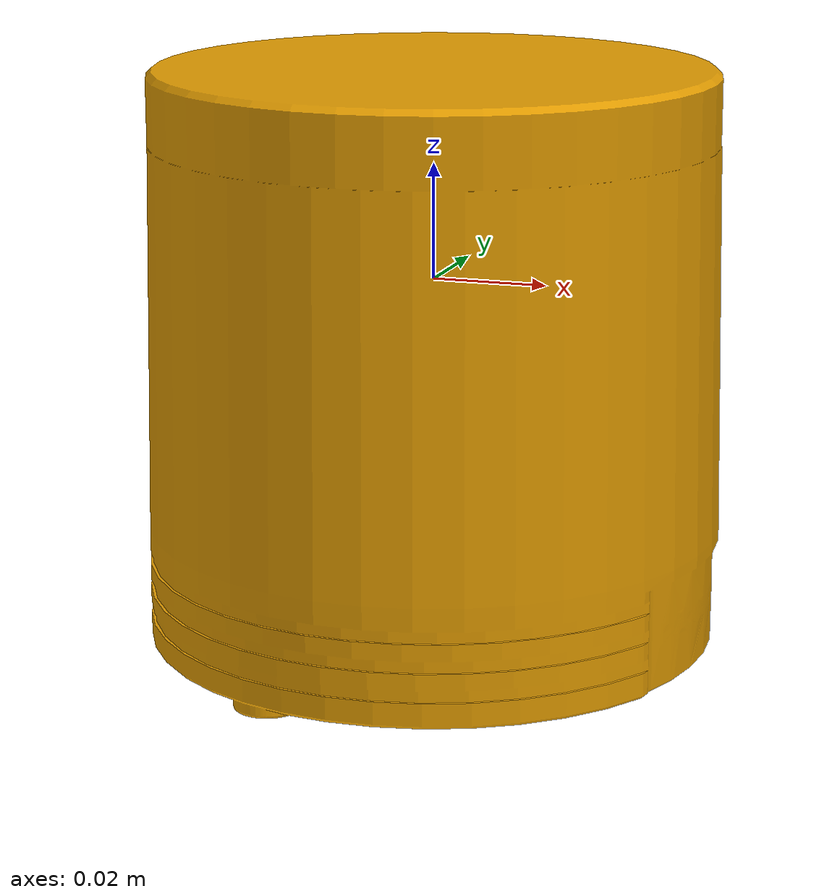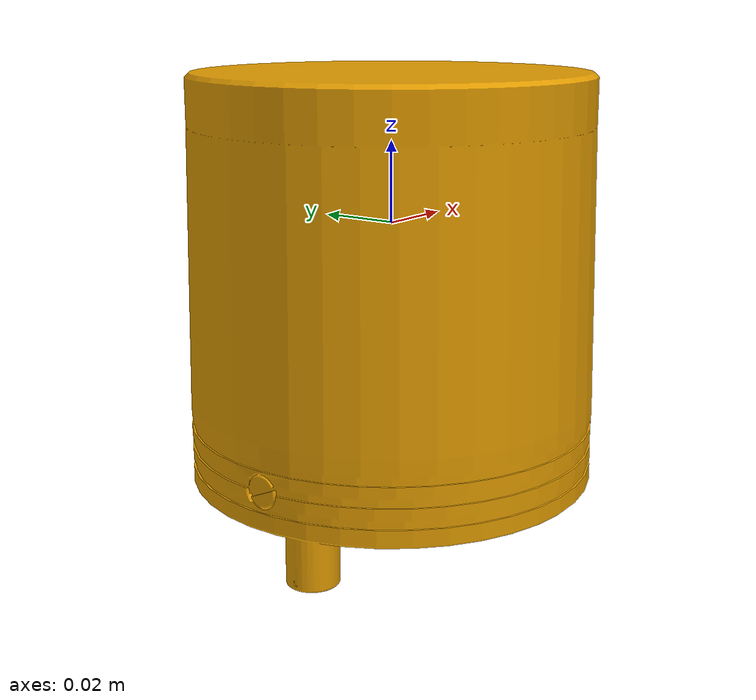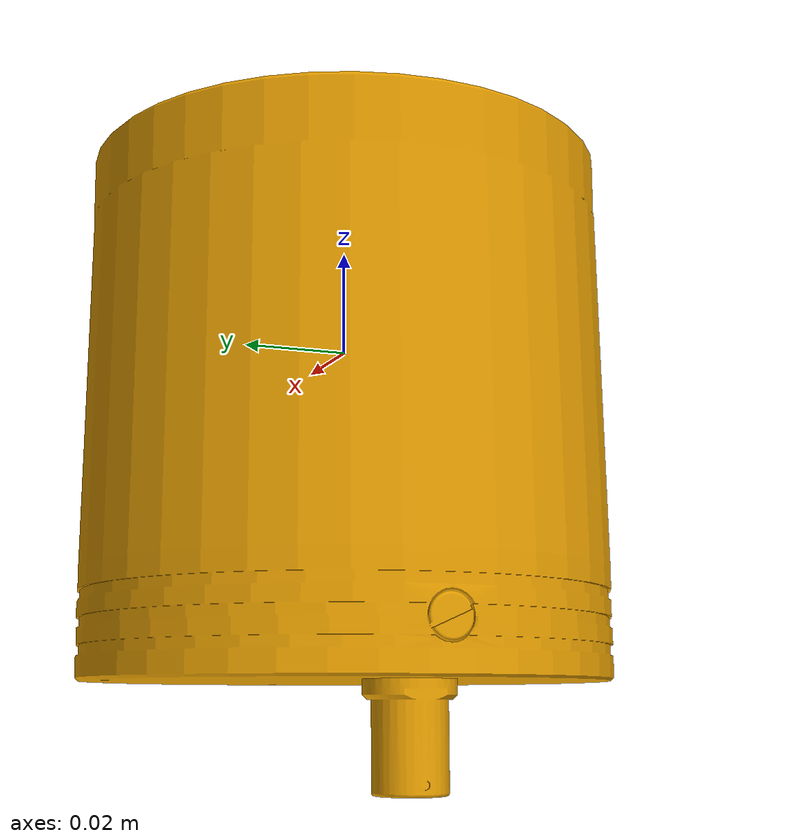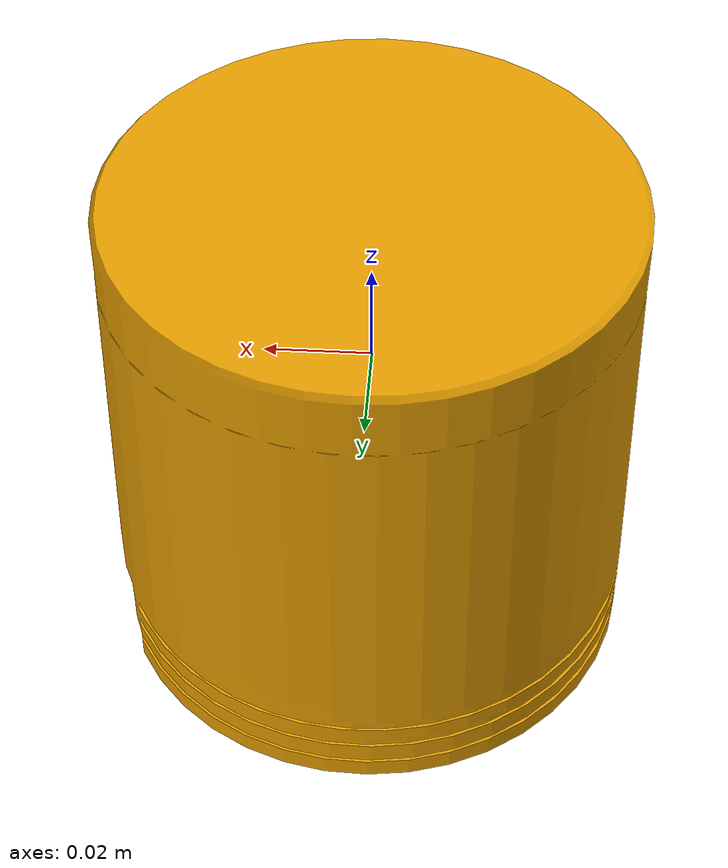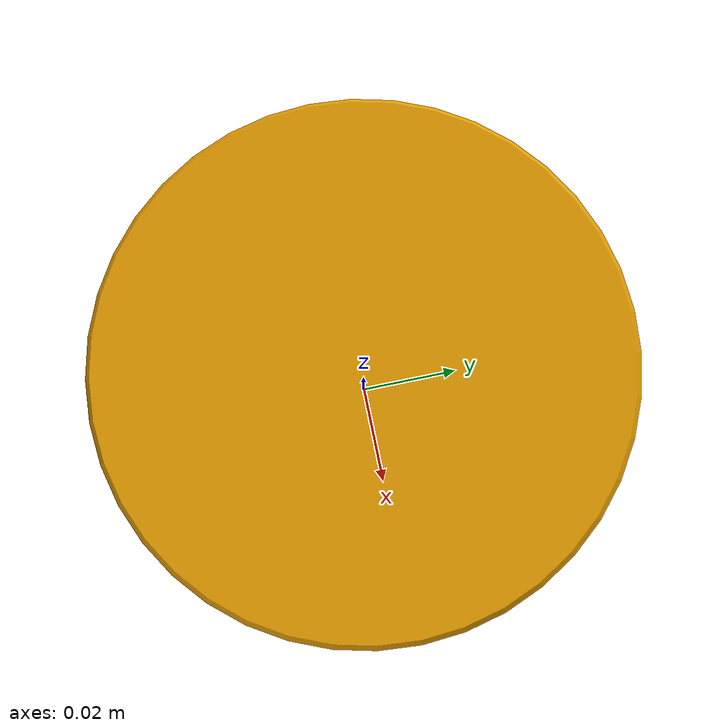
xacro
<?xml version="1.0"?>
<robot xmlns:xacro="http://www.ros.org/wiki/xacro" name="RS_Helios_5515">
    <link name='base_link'>
      <inertial>
        <origin xyz="0 0 0" rpy="0 0 0"/>
        <mass value="0.9"/>
        <inertia>
        <inertia ixx="0.0025413" ixy="0" ixz="0"
                  iyy="0.0016941" iyz="0"
                  izz="0.0024448"/>
        </inertia>
      </inertial>
      <collision name='collision'>
        <origin xyz="0 0 -0.02" rpy="0 0 0"/>
        <geometry>
          <cylinder radius="0.05" length="0.11"/>
        </geometry>
        <max_contacts>10</max_contacts>
      </collision>
      <visual name='visual'>
        <origin xyz="0 0 0" rpy="0 0 0"/>
        <geometry>
          <mesh filename="model://RS_Helios_5515/meshes/RS_Helios_frame.STL" />
        </geometry>
      </visual>
    </link>

    <!-- Gazebo requires the velodyne_gazebo_plugins package -->
    <gazebo reference="base_link">
      <sensor name='RS_Helios' type='gpu_ray'>
        <visualize>false</visualize>
        <pose frame=''>0 0 0 0 0 0</pose>
        <update_rate>10</update_rate>
        <ray>
          <scan>
            <horizontal>
              <samples>900</samples>
              <resolution>1</resolution>
              <min_angle>-1.5708</min_angle>
              <max_angle>1.5708</max_angle>
            </horizontal>
            <vertical>
              <samples>32</samples>
              <resolution>1</resolution>
              <min_angle>-0.959931089</min_angle>
              <max_angle>0.261799</max_angle>
            </vertical>
          </scan>
          <range>
            <min>0.2</min>
            <max>70</max>
            <resolution>0.001</resolution>
          </range>
          <noise>
            <type>gaussian</type>
            <mean>0</mean>
            <stddev>0</stddev>
          </noise>
        </ray>
        <plugin name='gazebo_ros_laser_controller' filename='libgazebo_ros_velodyne_gpu_laser.so'>
          <topicName>/lidar_points</topicName>
          <robotNamespace>/</robotNamespace>
          <frameName>rs_helios</frameName>
          <organize_cloud>false</organize_cloud>
          <min_range>0.2</min_range>
          <max_range>70.0</max_range>
          <gaussianNoise>0.008</gaussianNoise>
        </plugin>
      </sensor>
    </gazebo>
</robot>
